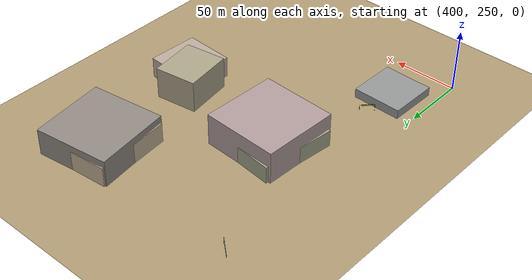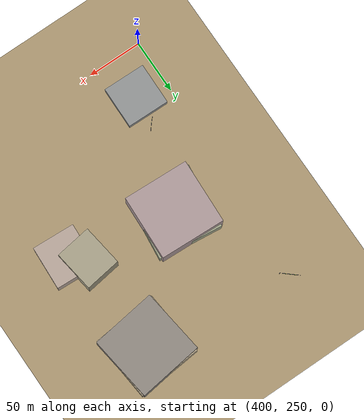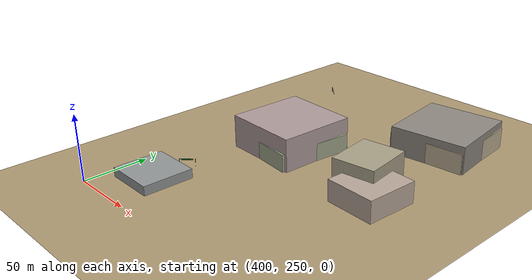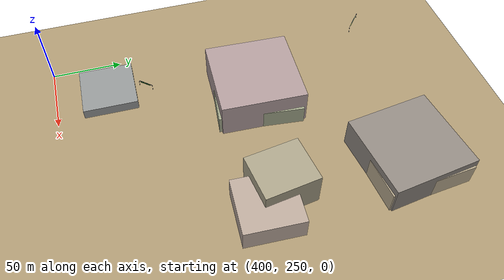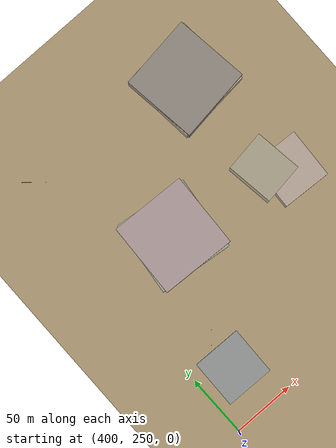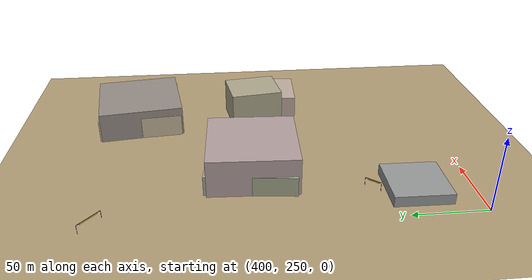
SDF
<sdf version="1.9">
 <world name="crossroad_world">
  <model name="ground_plane">
   <static>true</static>
   <pose>0 0 -0.05 0 0 0</pose>
   <link name="link">
    <collision name="collision">
     <geometry><plane><normal>0 0 1</normal><size>10000 10000</size></plane></geometry>
    </collision>
    <visual name="visual">
     <geometry><plane><normal>0 0 1</normal><size>15000 15000</size></plane></geometry>
     <material><ambient>0.68 0.60 0.45 1</ambient><diffuse>0.68 0.60 0.45 1</diffuse></material>
    </visual>
   </link>
  </model>
  <model name="gantry_82">
   <static>true</static>
   <pose>407.571 490.185 0 0 0 2.430</pose>
   <link name="link">
    <visual name="post_l">
     <pose>-8.900 0 2.925 0 0 0</pose>
     <geometry><cylinder><radius>0.1</radius><length>5.85</length></cylinder></geometry>
     <material><ambient>0.30 0.30 0.35 1</ambient><diffuse>0.30 0.30 0.35 1</diffuse></material>
    </visual>
    <visual name="post_r">
     <pose>8.900 0 2.925 0 0 0</pose>
     <geometry><cylinder><radius>0.1</radius><length>5.85</length></cylinder></geometry>
     <material><ambient>0.30 0.30 0.35 1</ambient><diffuse>0.30 0.30 0.35 1</diffuse></material>
    </visual>
    <visual name="beam">
     <pose>0 0 6.000 0 0 0</pose>
     <geometry><box><size>17.800 0.22 0.22</size></box></geometry>
     <material><ambient>0.30 0.30 0.35 1</ambient><diffuse>0.30 0.30 0.35 1</diffuse></material>
    </visual>
    <visual name="sign_border">
     <pose>0 -0.14 5.450 0 0 0</pose>
     <geometry><box><size>12.896 0.04 0.92</size></box></geometry>
     <material><ambient>0.90 0.85 0.10 1</ambient><diffuse>0.90 0.85 0.10 1</diffuse></material>
    </visual>
    <visual name="sign_panel">
     <pose>0 -0.15 5.450 0 0 0</pose>
     <geometry><box><size>12.816 0.05 0.86</size></box></geometry>
     <material><ambient>0.05 0.38 0.10 1</ambient><diffuse>0.05 0.38 0.10 1</diffuse></material>
    </visual>
    <collision name="col_post_l">
     <pose>-8.900 0 2.925 0 0 0</pose>
     <geometry><cylinder><radius>0.1</radius><length>5.85</length></cylinder></geometry>
    </collision>
    <collision name="col_post_r">
     <pose>8.900 0 2.925 0 0 0</pose>
     <geometry><cylinder><radius>0.1</radius><length>5.85</length></cylinder></geometry>
    </collision>
    <collision name="col_beam">
     <pose>0 0 6.000 0 0 0</pose>
     <geometry><box><size>17.800 0.22 0.22</size></box></geometry>
    </collision>
   </link>
  </model>
  <model name="gantry_134">
   <static>true</static>
   <pose>430.726 315.572 0 0 0 0.853</pose>
   <link name="link">
    <visual name="post_l">
     <pose>-5.700 0 2.925 0 0 0</pose>
     <geometry><cylinder><radius>0.1</radius><length>5.85</length></cylinder></geometry>
     <material><ambient>0.30 0.30 0.35 1</ambient><diffuse>0.30 0.30 0.35 1</diffuse></material>
    </visual>
    <visual name="post_r">
     <pose>5.700 0 2.925 0 0 0</pose>
     <geometry><cylinder><radius>0.1</radius><length>5.85</length></cylinder></geometry>
     <material><ambient>0.30 0.30 0.35 1</ambient><diffuse>0.30 0.30 0.35 1</diffuse></material>
    </visual>
    <visual name="beam">
     <pose>0 0 6.000 0 0 0</pose>
     <geometry><box><size>11.400 0.22 0.22</size></box></geometry>
     <material><ambient>0.30 0.30 0.35 1</ambient><diffuse>0.30 0.30 0.35 1</diffuse></material>
    </visual>
    <visual name="sign_border">
     <pose>0 -0.14 5.450 0 0 0</pose>
     <geometry><box><size>8.288 0.04 0.92</size></box></geometry>
     <material><ambient>0.90 0.85 0.10 1</ambient><diffuse>0.90 0.85 0.10 1</diffuse></material>
    </visual>
    <visual name="sign_panel">
     <pose>0 -0.15 5.450 0 0 0</pose>
     <geometry><box><size>8.208 0.05 0.86</size></box></geometry>
     <material><ambient>0.05 0.38 0.10 1</ambient><diffuse>0.05 0.38 0.10 1</diffuse></material>
    </visual>
    <collision name="col_post_l">
     <pose>-5.700 0 2.925 0 0 0</pose>
     <geometry><cylinder><radius>0.1</radius><length>5.85</length></cylinder></geometry>
    </collision>
    <collision name="col_post_r">
     <pose>5.700 0 2.925 0 0 0</pose>
     <geometry><cylinder><radius>0.1</radius><length>5.85</length></cylinder></geometry>
    </collision>
    <collision name="col_beam">
     <pose>0 0 6.000 0 0 0</pose>
     <geometry><box><size>11.400 0.22 0.22</size></box></geometry>
    </collision>
   </link>
  </model>
  <model name="building_528">
   <static>true</static>
   <pose>459.076 391.169 6.739 0 0 -0.108</pose>
   <link name="link">
    <visual name="body">
     <geometry><box><size>60.00 60.00 13.48</size></box></geometry>
     <material><ambient>0.63 0.65 0.54 1</ambient><diffuse>0.63 0.65 0.54 1</diffuse></material>
    </visual>
    <collision name="col"><geometry><box><size>60.00 60.00 13.48</size></box></geometry></collision>
   </link>
  </model>
  <model name="building_529">
   <static>true</static>
   <pose>459.076 391.169 12.772 0 0 -0.041</pose>
   <link name="link">
    <visual name="body">
     <geometry><box><size>60.00 60.00 25.54</size></box></geometry>
     <material><ambient>0.69 0.61 0.61 1</ambient><diffuse>0.69 0.61 0.61 1</diffuse></material>
    </visual>
    <collision name="col"><geometry><box><size>60.00 60.00 25.54</size></box></geometry></collision>
   </link>
  </model>
  <model name="building_602">
   <static>true</static>
   <pose>542.615 472.577 10.681 0 0 0.135</pose>
   <link name="link">
    <visual name="body">
     <geometry><box><size>60.00 60.00 21.36</size></box></geometry>
     <material><ambient>0.57 0.54 0.51 1</ambient><diffuse>0.57 0.54 0.51 1</diffuse></material>
    </visual>
    <collision name="col"><geometry><box><size>60.00 60.00 21.36</size></box></geometry></collision>
   </link>
  </model>
  <model name="building_603">
   <static>true</static>
   <pose>542.615 472.577 7.918 0 0 0.096</pose>
   <link name="link">
    <visual name="body">
     <geometry><box><size>60.00 60.00 15.84</size></box></geometry>
     <material><ambient>0.75 0.69 0.58 1</ambient><diffuse>0.75 0.69 0.58 1</diffuse></material>
    </visual>
    <collision name="col"><geometry><box><size>60.00 60.00 15.84</size></box></geometry></collision>
   </link>
  </model>
  <model name="building_664">
   <static>true</static>
   <pose>542.422 384.506 12.696 0 0 0.144</pose>
   <link name="link">
    <visual name="body">
     <geometry><box><size>33.08 37.97 25.39</size></box></geometry>
     <material><ambient>0.67 0.64 0.54 1</ambient><diffuse>0.67 0.64 0.54 1</diffuse></material>
    </visual>
    <collision name="col"><geometry><box><size>33.08 37.97 25.39</size></box></geometry></collision>
   </link>
  </model>
  <model name="building_665">
   <static>true</static>
   <pose>556.945 370.997 8.272 0 0 -0.049</pose>
   <link name="link">
    <visual name="body">
     <geometry><box><size>39.03 40.13 16.54</size></box></geometry>
     <material><ambient>0.73 0.66 0.61 1</ambient><diffuse>0.73 0.66 0.61 1</diffuse></material>
    </visual>
    <collision name="col"><geometry><box><size>39.03 40.13 16.54</size></box></geometry></collision>
   </link>
  </model>
  <model name="building_666">
   <static>true</static>
   <pose>428.236 288.330 3.605 0 0 -0.015</pose>
   <link name="link">
    <visual name="body">
     <geometry><box><size>39.03 38.71 7.21</size></box></geometry>
     <material><ambient>0.58 0.59 0.59 1</ambient><diffuse>0.58 0.59 0.59 1</diffuse></material>
    </visual>
    <collision name="col"><geometry><box><size>39.03 38.71 7.21</size></box></geometry></collision>
   </link>
  </model>
 </world>
</sdf>
